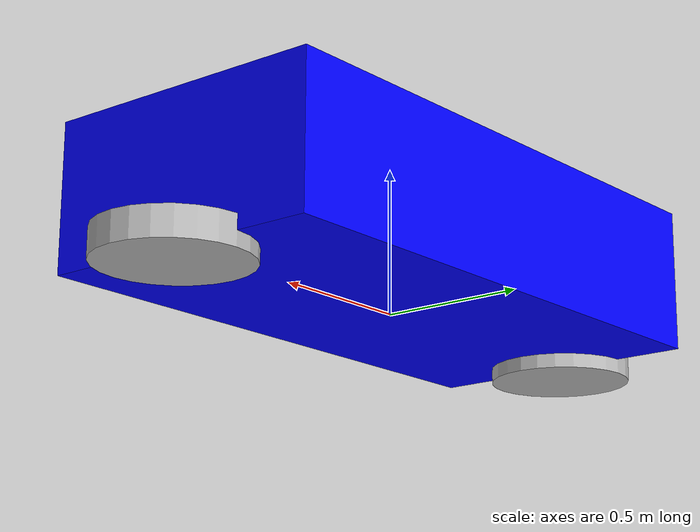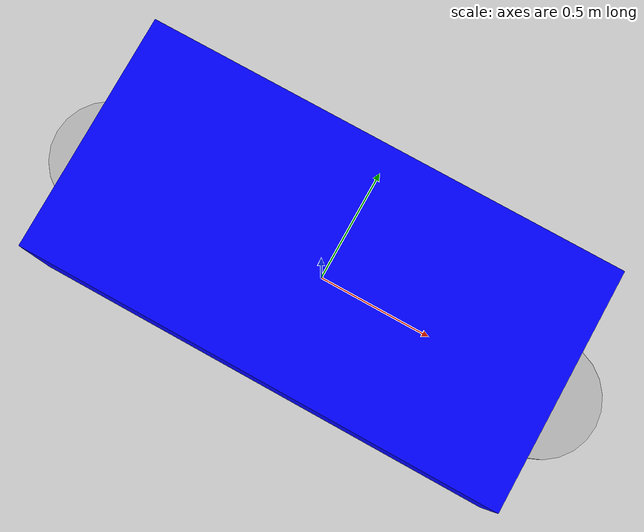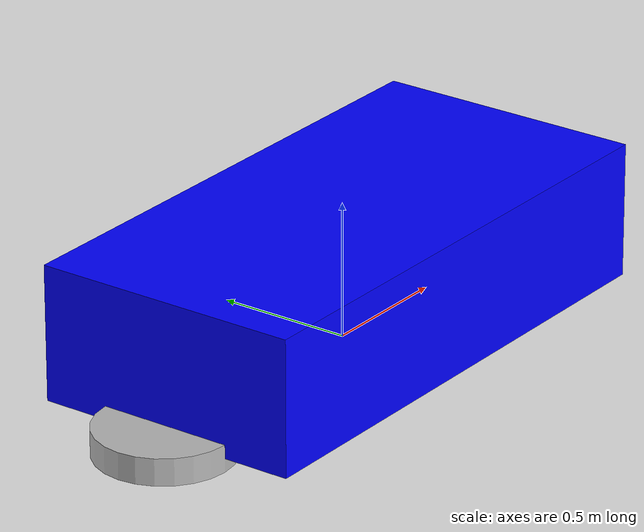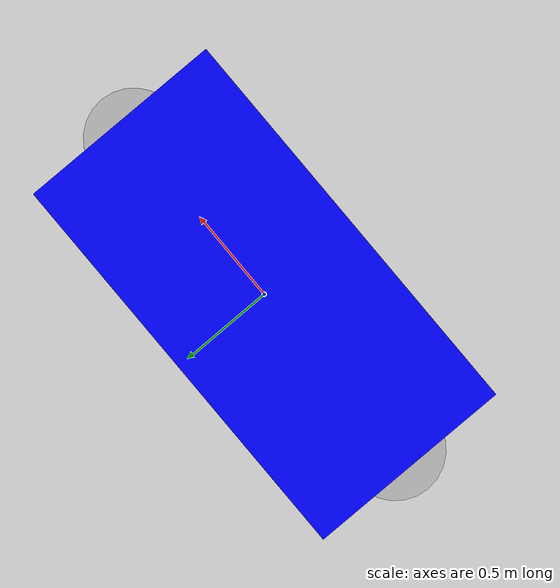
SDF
<?xml version="1.0" ?>
<sdf version="1.7">
  <model name="hull">
    <static>false</static>
    <pose>0 0 0.25 0 0 0</pose>

    <!-- Base Link -->
    <link name="base_link">
      <visual name="base_visual">
        <geometry>
          <box>
            <size>2.0 1.0 0.5</size>
          </box>
        </geometry>
        <material>
          <ambient>0 0 1 1</ambient>
        </material>
      </visual>

      <collision name="base_collision">
        <geometry>
          <box>
            <size>2.0 1.0 0.5</size>
          </box>
        </geometry>
      </collision>

      <inertial>
        <mass>50.0</mass>
        <inertia>
          <ixx>1.0</ixx> <iyy>1.0</iyy> <izz>1.0</izz>
          <ixy>0</ixy> <ixz>0</ixz> <iyz>0</iyz>
        </inertia>
      </inertial>
    </link>

    <!-- Left Wheel -->
    <link name="left_wheel">
      <pose>-1 0 -0.25 0 0 0</pose>
      <visual name="left_wheel_visual">
        <geometry>
          <cylinder>
            <radius>0.25</radius>
            <length>0.1</length>
          </cylinder>
        </geometry>
      </visual>
      <collision name="left_wheel_collision">
        <geometry>
          <cylinder>
            <radius>0.25</radius>
            <length>0.1</length>
          </cylinder>
        </geometry>
      </collision>
      <inertial>
        <mass>2.0</mass>
      </inertial>
    </link>

    <!-- Right Wheel -->
    <link name="right_wheel">
      <pose>1 0 -0.25 0 0 0</pose>
      <visual name="right_wheel_visual">
        <geometry>
          <cylinder>
            <radius>0.25</radius>
            <length>0.1</length>
          </cylinder>
        </geometry>
      </visual>
      <collision name="right_wheel_collision">
        <geometry>
          <cylinder>
            <radius>0.25</radius>
            <length>0.1</length>
          </cylinder>
        </geometry>
      </collision>
      <inertial>
        <mass>2.0</mass>
      </inertial>
    </link>

    <!-- Joints for the Wheels -->
    <joint name="left_wheel_joint" type="revolute">
      <parent>base_link</parent>
      <child>left_wheel</child>
      <pose>-1 0 -0.25 0 0 0</pose>
      <axis>
        <xyz>0 1 0</xyz>
        <limit>
          <lower>-3.0</lower>
          <upper>3.0</upper>
        </limit>
      </axis>
    </joint>

    <joint name="right_wheel_joint" type="revolute">
      <parent>base_link</parent>
      <child>right_wheel</child>
      <pose>1 0 -0.25 0 0 0</pose>
      <axis>
        <xyz>0 1 0</xyz>
        <limit>
          <lower>-3.0</lower>
          <upper>3.0</upper>
        </limit>
      </axis>
    </joint>

    <!-- ✅ Ignition Gazebo Diff Drive Plugin -->
    <plugin filename="ignition-gazebo-diff-drive-system" name="diff_drive">
      <left_joint>left_wheel_joint</left_joint>
      <right_joint>right_wheel_joint</right_joint>
      <wheel_separation>2.0</wheel_separation>
      <wheel_radius>0.25</wheel_radius>
      <odom_publish_frequency>20</odom_publish_frequency>
      <topic>/cmd_vel</topic>
      <odom_topic>/odom</odom_topic>
    </plugin>

  </model>
</sdf>
